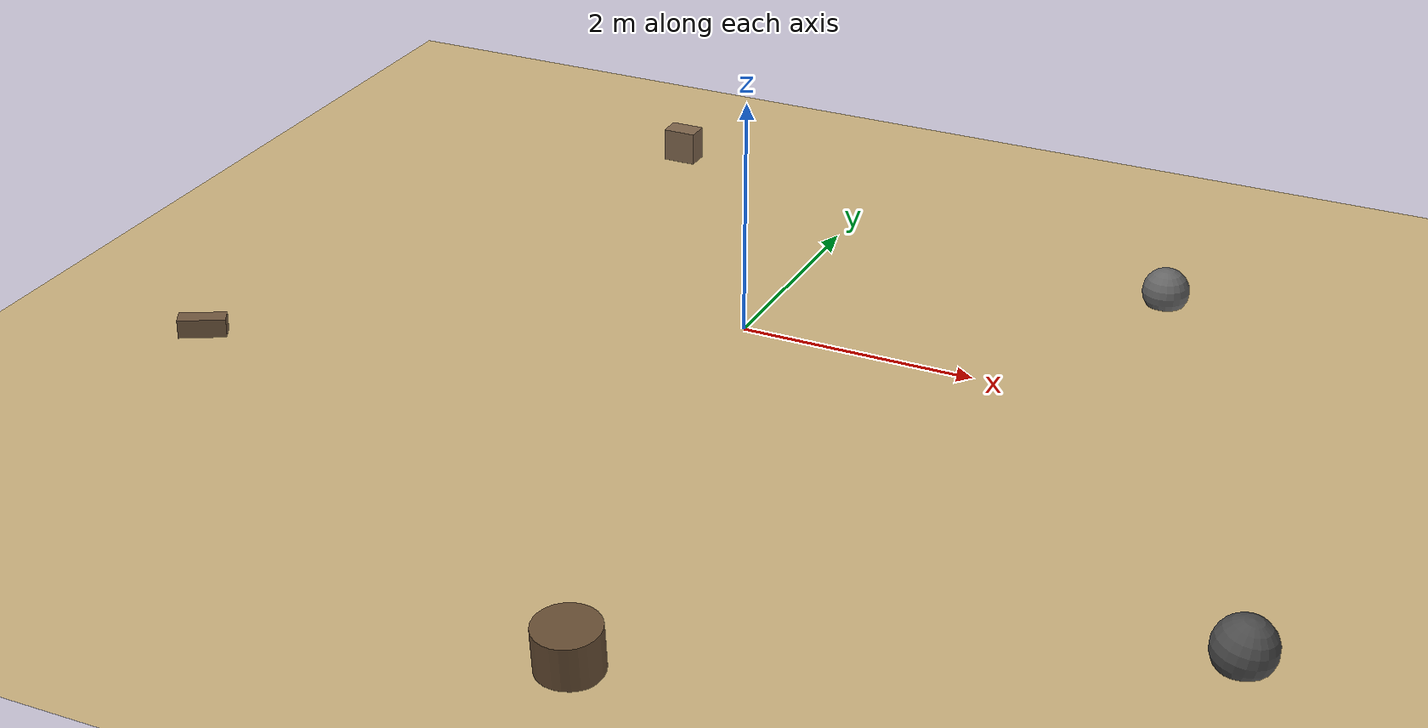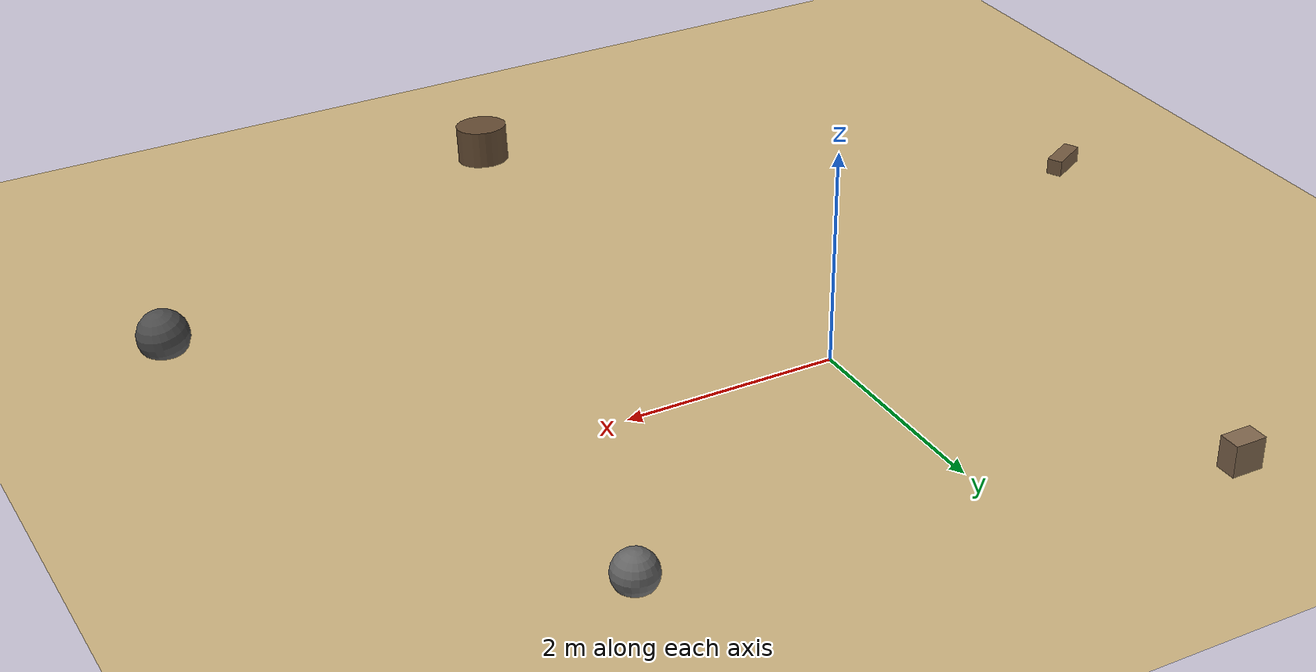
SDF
<sdf version='1.10'>
  <world name='rocky_terrain'>
    <physics name='1ms' type='ignored'>
      <max_step_size>0.05</max_step_size>
      <real_time_factor>1</real_time_factor>
      <real_time_update_rate>100</real_time_update_rate>
    </physics>

    <plugin name='gz::sim::systems::Physics' filename='gz-sim-physics-system'/>
    <plugin name='gz::sim::systems::UserCommands' filename='gz-sim-user-commands-system'/>
    <plugin name='gz::sim::systems::SceneBroadcaster' filename='gz-sim-scene-broadcaster-system'/>
    <plugin name='gz::sim::systems::Sensors' filename='gz-sim-sensors-system'>
      <render_engine>ogre2</render_engine>
    </plugin>
    <plugin name='gz::sim::systems::Contact' filename='gz-sim-contact-system'/>

    <gravity>0 0 -9.8</gravity>
    <magnetic_field>5.5e-06 2.3e-05 -4.2e-05</magnetic_field>
    <atmosphere type='adiabatic'/>

    <scene>
      <ambient>0.4 0.4 0.4 1</ambient>
      <background>0.7 0.7 0.7 1</background>
      <shadows>true</shadows>
    </scene>

    <!-- Main ground plane (flat, like original) -->
    <model name='ground_plane'>
      <static>true</static>
      <link name='link'>
        <collision name='collision'>
          <geometry>
            <plane>
              <normal>0 0 1</normal>
              <size>100 100</size>
            </plane>
          </geometry>
          <surface>
            <friction>
              <ode/>
            </friction>
            <bounce/>
            <contact/>
          </surface>
        </collision>
        <visual name='visual'>
          <geometry>
            <plane>
              <normal>0 0 1</normal>
              <size>100 100</size>
            </plane>
          </geometry>
          <material>
            <ambient>0.8 0.7 0.5 1</ambient>
            <diffuse>0.8 0.7 0.5 1</diffuse>
            <specular>0.8 0.7 0.5 1</specular>
          </material>
        </visual>
      </link>
    </model>

    <!-- Small rocks scattered around -->
    <model name='rock_1'>
      <pose>3 2 0.1 0 0 0</pose>
      <static>true</static>
      <link name='link'>
        <collision name='collision'>
          <geometry>
            <sphere><radius>0.2</radius></sphere>
          </geometry>
        </collision>
        <visual name='visual'>
          <geometry>
            <sphere><radius>0.2</radius></sphere>
          </geometry>
          <material>
            <diffuse>0.4 0.4 0.4 1.0</diffuse>
          </material>
        </visual>
      </link>
    </model>

    <model name='rock_2'>
      <pose>-2 3 0.15 0 0 0</pose>
      <static>true</static>
      <link name='link'>
        <collision name='collision'>
          <geometry>
            <box><size>0.3 0.2 0.3</size></box>
          </geometry>
        </collision>
        <visual name='visual'>
          <geometry>
            <box><size>0.3 0.2 0.3</size></box>
          </geometry>
          <material>
            <diffuse>0.5 0.4 0.3 1.0</diffuse>
          </material>
        </visual>
      </link>
    </model>

    <model name='rock_3'>
      <pose>5 -3 0.12 0 0.2 0</pose>
      <static>true</static>
      <link name='link'>
        <collision name='collision'>
          <geometry>
            <sphere><radius>0.24</radius></sphere>
          </geometry>
        </collision>
        <visual name='visual'>
          <geometry>
            <sphere><radius>0.24</radius></sphere>
          </geometry>
          <material>
            <diffuse>0.3 0.3 0.3 1.0</diffuse>
          </material>
        </visual>
      </link>
    </model>

    <model name='rock_4'>
      <pose>-4 -2 0.08 0 0 0.5</pose>
      <static>true</static>
      <link name='link'>
        <collision name='collision'>
          <geometry>
            <box><size>0.4 0.15 0.16</size></box>
          </geometry>
        </collision>
        <visual name='visual'>
          <geometry>
            <box><size>0.4 0.15 0.16</size></box>
          </geometry>
          <material>
            <diffuse>0.45 0.35 0.25 1.0</diffuse>
          </material>
        </visual>
      </link>
    </model>

    <model name='rock_5'>
      <pose>1 -5 0.18 0.1 0 0</pose>
      <static>true</static>
      <link name='link'>
        <collision name='collision'>
          <geometry>
            <cylinder><radius>0.25</radius><length>0.36</length></cylinder>
          </geometry>
        </collision>
        <visual name='visual'>
          <geometry>
            <cylinder><radius>0.25</radius><length>0.36</length></cylinder>
          </geometry>
          <material>
            <diffuse>0.4 0.3 0.2 1.0</diffuse>
          </material>
        </visual>
      </link>
    </model>

    <!-- Sun lighting -->
    <light name='sun' type='directional'>
      <cast_shadows>true</cast_shadows>
      <pose>0 0 10 0 0 0</pose>
      <diffuse>0.8 0.8 0.8 1</diffuse>
      <specular>0.2 0.2 0.2 1</specular>
      <direction>-0.5 0.1 -0.9</direction>
    </light>

  </world>
</sdf>
